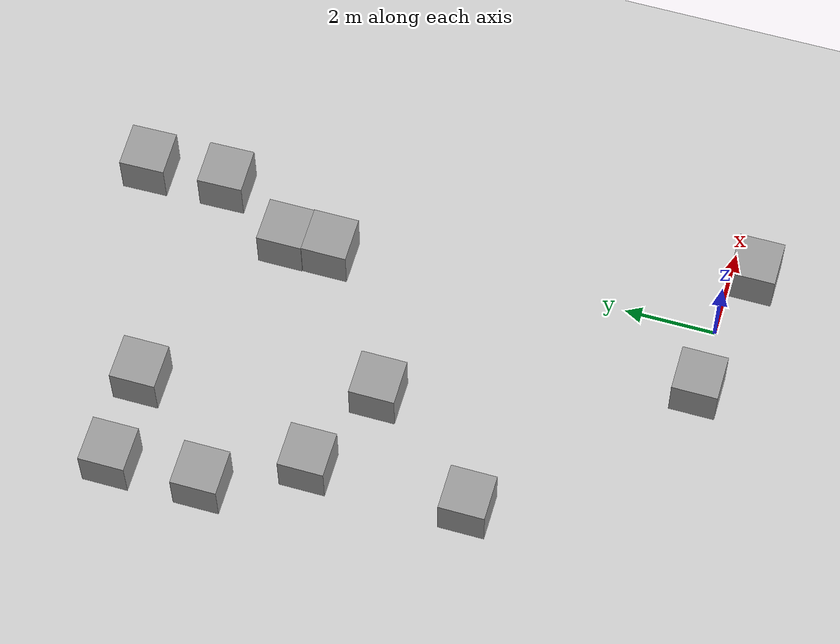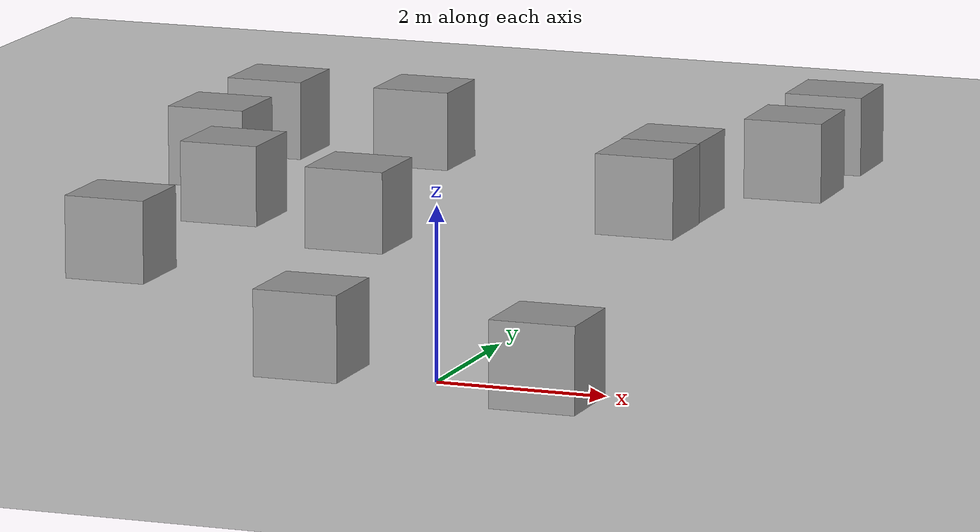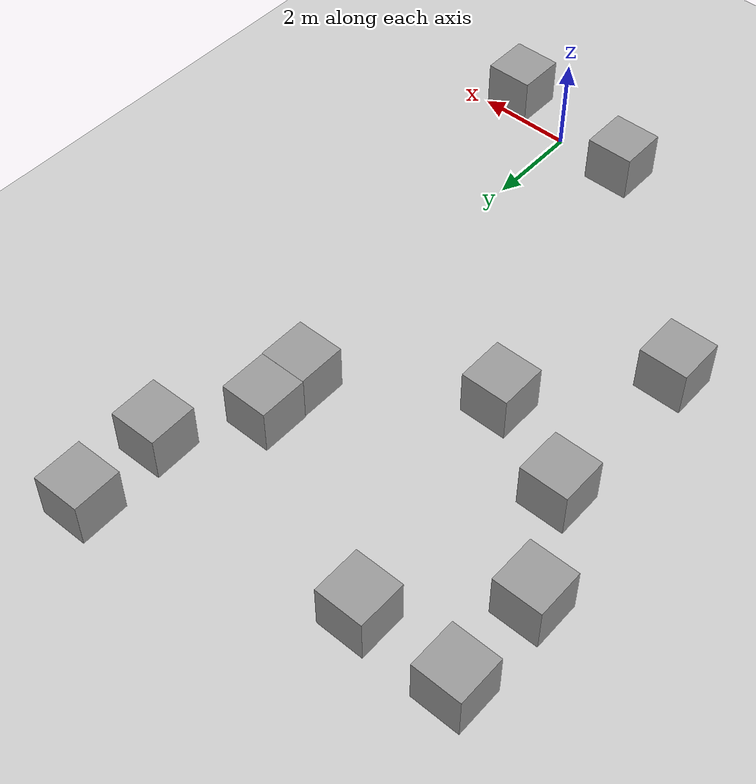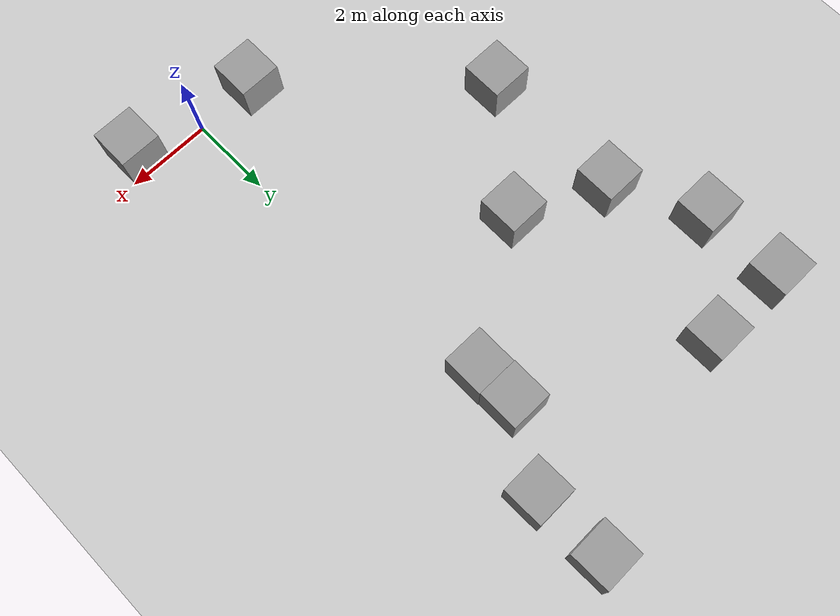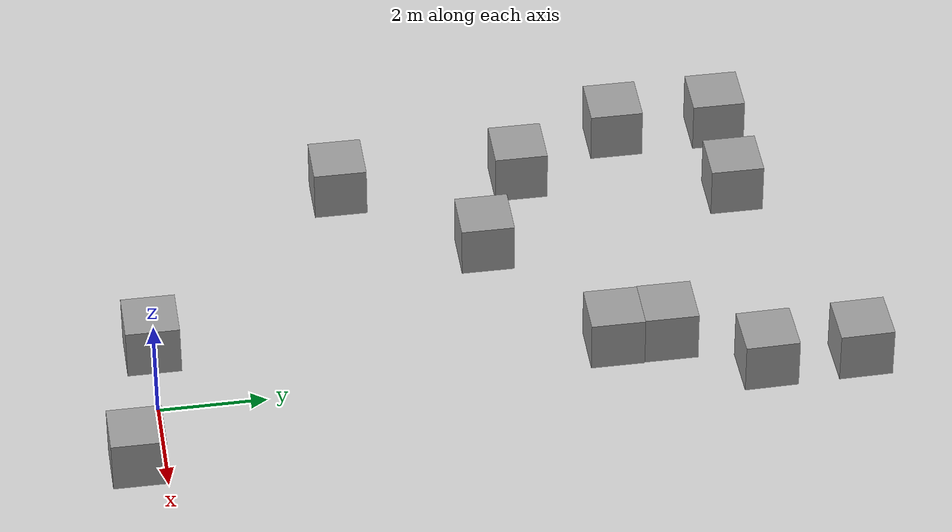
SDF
<sdf version="1.7">
 <world name="default">
  <light name="sun" type="directional">
   <pose>0 0 10 0 -0 0</pose>
   <diffuse>0.8 0.8 0.8 1</diffuse>
   <specular>0.2 0.2 0.2 1</specular>
   <attenuation>
    <range>1000</range>
    <constant>0.9</constant>
    <linear>0.01</linear>
    <quadratic>0.001</quadratic>
   </attenuation>
   <direction>-0.5 0.1 -0.9</direction>
   <spot><inner_angle>0</inner_angle><outer_angle>0</outer_angle><falloff>0</falloff></spot>
  </light>
  <plugin name="ActorPosesPlugin" filename="libActorPosesPlugin.so"/>
  <model name="ground_plane">
   <static>1</static>
   <link name="link">
    <collision name="collision">
     <geometry><plane><normal>0 0 1</normal><size>100 100</size></plane></geometry>
     <surface><friction><ode><mu>100</mu><mu2>50</mu2></ode></friction></surface>
    </collision>
    <visual name="visual">
     <cast_shadows>0</cast_shadows>
     <geometry><plane><normal>0 0 1</normal><size>100 100</size></plane></geometry>
     <material>
      <script><uri>file://media/materials/scripts/gazebo.material</uri><name>Gazebo/Grey</name></script>
     </material>
    </visual>
   </link>
  </model>
  <gravity>0 0 -9.8</gravity>
  <magnetic_field>6e-06 2.3e-05 -4.2e-05</magnetic_field>
  <atmosphere type="adiabatic"/>
  <physics name="default_physics" default="0" type="ode">
   <max_step_size>0.001</max_step_size>
   <real_time_factor>1</real_time_factor>
   <real_time_update_rate>1000</real_time_update_rate>
  </physics>
  <scene><ambient>0.4 0.4 0.4 1</ambient><background>0.7 0.7 0.7 1</background><shadows>1</shadows></scene>
  <spherical_coordinates>
   <surface_model>EARTH_WGS84</surface_model>
   <latitude_deg>0</latitude_deg>
   <longitude_deg>0</longitude_deg>
   <elevation>0</elevation>
   <heading_deg>0</heading_deg>
  </spherical_coordinates>
  <model name="unit_box_5">
   <pose>1.48152 -0.495466 0.5 0 -0 0</pose>
   <link name="link">
    <inertial>
     <mass>1</mass>
     <inertia>
      <ixx>0.166667</ixx>
      <ixy>0</ixy>
      <ixz>0</ixz>
      <iyy>0.166667</iyy>
      <iyz>0</iyz>
      <izz>0.166667</izz>
     </inertia>
    </inertial>
    <collision name="collision"><geometry><box><size>1 1 1</size></box></geometry></collision>
    <visual name="visual">
     <geometry><box><size>1 1 1</size></box></geometry>
     <material>
      <script><name>Gazebo/Grey</name><uri>file://media/materials/scripts/gazebo.material</uri></script>
     </material>
    </visual>
   </link>
  </model>
  <model name="unit_box_6">
   <pose>-1.51486 0.037296 0.5 0 -0 0</pose>
   <link name="link">
    <inertial>
     <mass>1</mass>
     <inertia>
      <ixx>0.166667</ixx>
      <ixy>0</ixy>
      <ixz>0</ixz>
      <iyy>0.166667</iyy>
      <iyz>0</iyz>
      <izz>0.166667</izz>
     </inertia>
    </inertial>
    <collision name="collision"><geometry><box><size>1 1 1</size></box></geometry></collision>
    <visual name="visual">
     <geometry><box><size>1 1 1</size></box></geometry>
     <material>
      <script><name>Gazebo/Grey</name><uri>file://media/materials/scripts/gazebo.material</uri></script>
     </material>
    </visual>
   </link>
  </model>
  <model name="unit_box">
   <pose>-0.477989 8.50004 0.5 -0 -0 -0.000461</pose>
   <link name="link">
    <inertial>
     <mass>1</mass>
     <inertia>
      <ixx>0.166667</ixx>
      <ixy>0</ixy>
      <ixz>0</ixz>
      <iyy>0.166667</iyy>
      <iyz>0</iyz>
      <izz>0.166667</izz>
     </inertia>
    </inertial>
    <collision name="collision"><geometry><box><size>1 1 1</size></box></geometry></collision>
    <visual name="visual">
     <geometry><box><size>1 1 1</size></box></geometry>
     <material>
      <script><name>Gazebo/Grey</name><uri>file://media/materials/scripts/gazebo.material</uri></script>
     </material>
    </visual>
   </link>
  </model>
  <model name="unit_box_clone">
   <pose>-0.4926 9.50016 0.5 0 0 -0.000439</pose>
   <link name="link">
    <inertial>
     <mass>1</mass>
     <inertia>
      <ixx>0.166667</ixx>
      <ixy>0</ixy>
      <ixz>0</ixz>
      <iyy>0.166667</iyy>
      <iyz>0</iyz>
      <izz>0.166667</izz>
     </inertia>
    </inertial>
    <collision name="collision"><geometry><box><size>1 1 1</size></box></geometry></collision>
    <visual name="visual">
     <geometry><box><size>1 1 1</size></box></geometry>
     <material>
      <script><name>Gazebo/Grey</name><uri>file://media/materials/scripts/gazebo.material</uri></script>
     </material>
    </visual>
   </link>
  </model>
  <model name="unit_box_clone_0">
   <pose>0.528649 11.1817 0.5 0 -0 0.019175</pose>
   <link name="link">
    <inertial>
     <mass>1</mass>
     <inertia>
      <ixx>0.166667</ixx>
      <ixy>0</ixy>
      <ixz>0</ixz>
      <iyy>0.166667</iyy>
      <iyz>0</iyz>
      <izz>0.166667</izz>
     </inertia>
    </inertial>
    <collision name="collision"><geometry><box><size>1 1 1</size></box></geometry></collision>
    <visual name="visual">
     <geometry><box><size>1 1 1</size></box></geometry>
     <material>
      <script><name>Gazebo/Grey</name><uri>file://media/materials/scripts/gazebo.material</uri></script>
     </material>
    </visual>
   </link>
  </model>
  <model name="unit_box_clone_3">
   <pose>0.485775 12.9514 0.5 0 -0 0.01872</pose>
   <link name="link">
    <inertial>
     <mass>1</mass>
     <inertia>
      <ixx>0.166667</ixx>
      <ixy>0</ixy>
      <ixz>0</ixz>
      <iyy>0.166667</iyy>
      <iyz>0</iyz>
      <izz>0.166667</izz>
     </inertia>
    </inertial>
    <collision name="collision"><geometry><box><size>1 1 1</size></box></geometry></collision>
    <visual name="visual">
     <geometry><box><size>1 1 1</size></box></geometry>
     <material>
      <script><name>Gazebo/Grey</name><uri>file://media/materials/scripts/gazebo.material</uri></script>
     </material>
    </visual>
   </link>
  </model>
  <model name="unit_box_clone_clone">
   <pose>-3.4842 6.52545 0.5 0 0 -0.000439</pose>
   <link name="link">
    <inertial>
     <mass>1</mass>
     <inertia>
      <ixx>0.166667</ixx>
      <ixy>0</ixy>
      <ixz>0</ixz>
      <iyy>0.166667</iyy>
      <iyz>0</iyz>
      <izz>0.166667</izz>
     </inertia>
    </inertial>
    <collision name="collision"><geometry><box><size>1 1 1</size></box></geometry></collision>
    <visual name="visual">
     <geometry><box><size>1 1 1</size></box></geometry>
     <material>
      <script><name>Gazebo/Grey</name><uri>file://media/materials/scripts/gazebo.material</uri></script>
     </material>
    </visual>
   </link>
  </model>
  <model name="unit_box_clone_clone_0">
   <pose>-5.49676 7.46141 0.5 0 0 -0.000439</pose>
   <link name="link">
    <inertial>
     <mass>1</mass>
     <inertia>
      <ixx>0.166667</ixx>
      <ixy>0</ixy>
      <ixz>0</ixz>
      <iyy>0.166667</iyy>
      <iyz>0</iyz>
      <izz>0.166667</izz>
     </inertia>
    </inertial>
    <collision name="collision"><geometry><box><size>1 1 1</size></box></geometry></collision>
    <visual name="visual">
     <geometry><box><size>1 1 1</size></box></geometry>
     <material>
      <script><name>Gazebo/Grey</name><uri>file://media/materials/scripts/gazebo.material</uri></script>
     </material>
    </visual>
   </link>
  </model>
  <model name="unit_box_clone_clone_1">
   <pose>-6.50241 9.46906 0.5 0 -0 0.001592</pose>
   <link name="link">
    <inertial>
     <mass>1</mass>
     <inertia>
      <ixx>0.166667</ixx>
      <ixy>0</ixy>
      <ixz>0</ixz>
      <iyy>0.166667</iyy>
      <iyz>0</iyz>
      <izz>0.166667</izz>
     </inertia>
    </inertial>
    <collision name="collision"><geometry><box><size>1 1 1</size></box></geometry></collision>
    <visual name="visual">
     <geometry><box><size>1 1 1</size></box></geometry>
     <material>
      <script><name>Gazebo/Grey</name><uri>file://media/materials/scripts/gazebo.material</uri></script>
     </material>
    </visual>
   </link>
  </model>
  <model name="unit_box_clone_clone_3">
   <pose>-6.51782 11.4695 0.5 0 -0 0.000312</pose>
   <link name="link">
    <inertial>
     <mass>1</mass>
     <inertia>
      <ixx>0.166667</ixx>
      <ixy>0</ixy>
      <ixz>0</ixz>
      <iyy>0.166667</iyy>
      <iyz>0</iyz>
      <izz>0.166667</izz>
     </inertia>
    </inertial>
    <collision name="collision"><geometry><box><size>1 1 1</size></box></geometry></collision>
    <visual name="visual">
     <geometry><box><size>1 1 1</size></box></geometry>
     <material>
      <script><name>Gazebo/Grey</name><uri>file://media/materials/scripts/gazebo.material</uri></script>
     </material>
    </visual>
   </link>
  </model>
  <model name="unit_box_clone_clone_4">
   <pose>-4.51775 11.468 0.5 0 -0 0.000416</pose>
   <link name="link">
    <inertial>
     <mass>1</mass>
     <inertia>
      <ixx>0.166667</ixx>
      <ixy>0</ixy>
      <ixz>0</ixz>
      <iyy>0.166667</iyy>
      <iyz>0</iyz>
      <izz>0.166667</izz>
     </inertia>
    </inertial>
    <collision name="collision"><geometry><box><size>1 1 1</size></box></geometry></collision>
    <visual name="visual">
     <geometry><box><size>1 1 1</size></box></geometry>
     <material>
      <script><name>Gazebo/Grey</name><uri>file://media/materials/scripts/gazebo.material</uri></script>
     </material>
    </visual>
   </link>
  </model>
  <model name="unit_box_clone_clone_0_clone">
   <pose>-5.5198 3.98774 0.5 0 -0 -0.000439</pose>
   <link name="link">
    <inertial>
     <mass>1</mass>
     <inertia>
      <ixx>0.166667</ixx>
      <ixy>0</ixy>
      <ixz>0</ixz>
      <iyy>0.166667</iyy>
      <iyz>0</iyz>
      <izz>0.166667</izz>
     </inertia>
    </inertial>
    <collision name="collision"><geometry><box><size>1 1 1</size></box></geometry></collision>
    <visual name="visual">
     <geometry><box><size>1 1 1</size></box></geometry>
     <material>
      <script><name>Gazebo/Grey</name><uri>file://media/materials/scripts/gazebo.material</uri></script>
     </material>
    </visual>
   </link>
  </model>
 </world>
</sdf>
